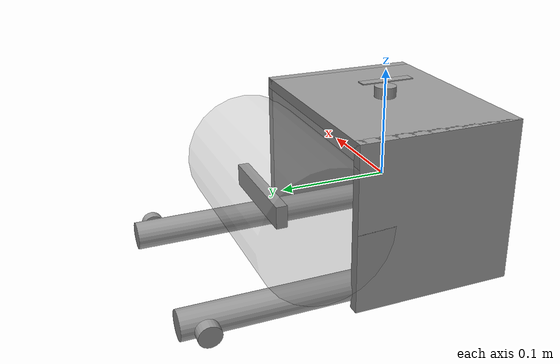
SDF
<?xml version='1.0'?>
<sdf version='1.6'>
  <model name='openrov-v1'>
    <link name='main_body'>
      <pose frame=''>0 0 0 0 -0 0</pose>
      <inertial>
        <mass>0.45</mass>
        <inertia>
          <ixx>1.04</ixx>
          <ixy>0</ixy>
          <ixz>0</ixz>
          <iyy>1.04</iyy>
          <iyz>0</iyz>
          <izz>1.04</izz>
        </inertia>
        <pose frame=''>0 0 0 0 -0 0</pose>
      </inertial>
      <self_collide>0</self_collide>
      <kinematic>0</kinematic>
      <gravity>1</gravity>
      <visual name='ModelPreview_10::Main_Body::visual_2'>
        <pose frame=''>-0.095 0 0 0 -0 0</pose>
        <geometry>
          <box>
            <size>0.01 0.15 0.15</size>
          </box>
        </geometry>
        <material>
          <lighting>1</lighting>
          <script>
            <uri>file://media/materials/scripts/gazebo.material</uri>
            <name>Gazebo/Grey</name>
          </script>
          <ambient>0.3 0.3 0.3 1</ambient>
          <diffuse>0.7 0.7 0.7 1</diffuse>
          <specular>0.01 0.01 0.01 1</specular>
          <emissive>0 0 0 1</emissive>
          <shader type='vertex'>
            <normal_map>__default__</normal_map>
          </shader>
        </material>
        <cast_shadows>1</cast_shadows>
        <transparency>0</transparency>
      </visual>
      <visual name='ModelPreview_10::Main_Body::visual_1'>
        <pose frame=''>0.095 0 0 0 -0 0</pose>
        <geometry>
          <box>
            <size>0.01 0.15 0.15</size>
          </box>
        </geometry>
        <material>
          <lighting>1</lighting>
          <script>
            <uri>file://media/materials/scripts/gazebo.material</uri>
            <name>Gazebo/Grey</name>
          </script>
          <ambient>0.3 0.3 0.3 1</ambient>
          <diffuse>0.7 0.7 0.7 1</diffuse>
          <specular>0.01 0.01 0.01 1</specular>
          <emissive>0 0 0 1</emissive>
          <shader type='vertex'>
            <normal_map>__default__</normal_map>
          </shader>
        </material>
        <cast_shadows>1</cast_shadows>
        <transparency>0</transparency>
      </visual>
      <visual name='visual'>
        <pose frame=''>0 0 0.07 0 -0 0</pose>
        <geometry>
          <box>
            <size>0.2 0.15 0.01</size>
          </box>
        </geometry>
        <material>
          <lighting>1</lighting>
          <script>
            <uri>file://media/materials/scripts/gazebo.material</uri>
            <name>Gazebo/Grey</name>
          </script>
          <ambient>0.3 0.3 0.3 1</ambient>
          <diffuse>0.7 0.7 0.7 1</diffuse>
          <specular>0.01 0.01 0.01 1</specular>
          <emissive>0 0 0 1</emissive>
          <shader type='vertex'>
            <normal_map>__default__</normal_map>
          </shader>
        </material>
        <cast_shadows>1</cast_shadows>
        <transparency>0</transparency>
      </visual>
      <collision name='collision'>
        <laser_retro>0</laser_retro>
        <max_contacts>10</max_contacts>
        <pose frame=''>0 0 0.07 0 -0 0</pose>
        <geometry>
          <box>
            <size>0.2 0.15 0.01</size>
          </box>
        </geometry>
        <surface>
          <friction>
            <ode>
              <mu>1</mu>
              <mu2>1</mu2>
              <fdir1>0 0 0</fdir1>
              <slip1>0</slip1>
              <slip2>0</slip2>
            </ode>
            <torsional>
              <coefficient>1</coefficient>
              <patch_radius>0</patch_radius>
              <surface_radius>0</surface_radius>
              <use_patch_radius>1</use_patch_radius>
              <ode>
                <slip>0</slip>
              </ode>
            </torsional>
          </friction>
          <bounce>
            <restitution_coefficient>0</restitution_coefficient>
            <threshold>1e+06</threshold>
          </bounce>
          <contact>
            <collide_without_contact>0</collide_without_contact>
            <collide_without_contact_bitmask>1</collide_without_contact_bitmask>
            <collide_bitmask>1</collide_bitmask>
            <ode>
              <soft_cfm>0</soft_cfm>
              <soft_erp>0.2</soft_erp>
              <kp>1e+13</kp>
              <kd>1</kd>
              <max_vel>0.01</max_vel>
              <min_depth>0</min_depth>
            </ode>
            <bullet>
              <split_impulse>1</split_impulse>
              <split_impulse_penetration_threshold>-0.01</split_impulse_penetration_threshold>
              <soft_cfm>0</soft_cfm>
              <soft_erp>0.2</soft_erp>
              <kp>1e+13</kp>
              <kd>1</kd>
            </bullet>
          </contact>
        </surface>
      </collision>
      <collision name='collision_1'>
        <laser_retro>0</laser_retro>
        <max_contacts>10</max_contacts>
        <pose frame=''>0.095 0 0 0 -0 0</pose>
        <geometry>
          <box>
            <size>0.01 0.15 0.15</size>
          </box>
        </geometry>
        <surface>
          <friction>
            <ode>
              <mu>1</mu>
              <mu2>1</mu2>
              <fdir1>0 0 0</fdir1>
              <slip1>0</slip1>
              <slip2>0</slip2>
            </ode>
            <torsional>
              <coefficient>1</coefficient>
              <patch_radius>0</patch_radius>
              <surface_radius>0</surface_radius>
              <use_patch_radius>1</use_patch_radius>
              <ode>
                <slip>0</slip>
              </ode>
            </torsional>
          </friction>
          <bounce>
            <restitution_coefficient>0</restitution_coefficient>
            <threshold>1e+06</threshold>
          </bounce>
          <contact>
            <collide_without_contact>0</collide_without_contact>
            <collide_without_contact_bitmask>1</collide_without_contact_bitmask>
            <collide_bitmask>1</collide_bitmask>
            <ode>
              <soft_cfm>0</soft_cfm>
              <soft_erp>0.2</soft_erp>
              <kp>1e+13</kp>
              <kd>1</kd>
              <max_vel>0.01</max_vel>
              <min_depth>0</min_depth>
            </ode>
            <bullet>
              <split_impulse>1</split_impulse>
              <split_impulse_penetration_threshold>-0.01</split_impulse_penetration_threshold>
              <soft_cfm>0</soft_cfm>
              <soft_erp>0.2</soft_erp>
              <kp>1e+13</kp>
              <kd>1</kd>
            </bullet>
          </contact>
        </surface>
      </collision>
      <collision name='collision_2'>
        <laser_retro>0</laser_retro>
        <max_contacts>10</max_contacts>
        <pose frame=''>-0.095 0 0 0 -0 0</pose>
        <geometry>
          <box>
            <size>0.01 0.15 0.15</size>
          </box>
        </geometry>
        <surface>
          <friction>
            <ode>
              <mu>1</mu>
              <mu2>1</mu2>
              <fdir1>0 0 0</fdir1>
              <slip1>0</slip1>
              <slip2>0</slip2>
            </ode>
            <torsional>
              <coefficient>1</coefficient>
              <patch_radius>0</patch_radius>
              <surface_radius>0</surface_radius>
              <use_patch_radius>1</use_patch_radius>
              <ode>
                <slip>0</slip>
              </ode>
            </torsional>
          </friction>
          <bounce>
            <restitution_coefficient>0</restitution_coefficient>
            <threshold>1e+06</threshold>
          </bounce>
          <contact>
            <collide_without_contact>0</collide_without_contact>
            <collide_without_contact_bitmask>1</collide_without_contact_bitmask>
            <collide_bitmask>1</collide_bitmask>
            <ode>
              <soft_cfm>0</soft_cfm>
              <soft_erp>0.2</soft_erp>
              <kp>1e+13</kp>
              <kd>1</kd>
              <max_vel>0.01</max_vel>
              <min_depth>0</min_depth>
            </ode>
            <bullet>
              <split_impulse>1</split_impulse>
              <split_impulse_penetration_threshold>-0.01</split_impulse_penetration_threshold>
              <soft_cfm>0</soft_cfm>
              <soft_erp>0.2</soft_erp>
              <kp>1e+13</kp>
              <kd>1</kd>
            </bullet>
          </contact>
        </surface>
      </collision>
    </link>
    <link name='camera'>
      <pose frame=''>-0 0.12 -0 0 -0 0</pose>
      <inertial>
        <mass>0.02</mass>
        <inertia>
          <ixx>1.9e-07</ixx>
          <ixy>0</ixy>
          <ixz>0</ixz>
          <iyy>2.2e-07</iyy>
          <iyz>0</iyz>
          <izz>1.6e-07</izz>
        </inertia>
        <pose frame=''>0 0 0 0 -0 0</pose>
      </inertial>
      <self_collide>0</self_collide>
      <kinematic>0</kinematic>
      <sensor name='camera_sensor' type='camera'>
        <pose frame=''>0 0 0 0 -0 1.5707</pose>
        <always_on>1</always_on>
        <visualize>1</visualize>
        <camera name='__default__'>
          <horizontal_fov>2.0943</horizontal_fov>
          <image>
            <width>320</width>
            <height>240</height>
          </image>
          <clip>
            <near>0.1</near>
            <far>100</far>
          </clip>
          <save enabled='0'>
            <path>/home/emanuel/tmp/camera</path>
          </save>
        </camera>
        <plugin name='camera_controller' filename='libgazebo_ros_camera.so'>
          <alwaysOn>true</alwaysOn>
          <updateRate>30.0</updateRate>
          <cameraName>OpenROV/sensor/camera</cameraName>
          <imageTopicName>image_raw</imageTopicName>
          <cameraInfoTopicName>camera_info</cameraInfoTopicName>
          <frameName>camera</frameName>
          <hackBaseline>0.07</hackBaseline>
          <distortionK1>0.0</distortionK1>
          <distortionK2>0.0</distortionK2>
          <distortionK3>0.0</distortionK3>
          <distortionT1>0.0</distortionT1>
          <distortionT2>0.0</distortionT2>
        </plugin>
      </sensor>
      <visual name='visual'>
        <pose frame=''>0 0 0 0 -0 0</pose>
        <geometry>
          <box>
            <size>0.1 0.01 0.02</size>
          </box>
        </geometry>
        <material>
          <lighting>1</lighting>
          <script>
            <uri>file://media/materials/scripts/gazebo.material</uri>
            <name>Gazebo/Grey</name>
          </script>
          <ambient>0.3 0.3 0.3 1</ambient>
          <diffuse>0.7 0.7 0.7 1</diffuse>
          <specular>0.01 0.01 0.01 1</specular>
          <emissive>0 0 0 1</emissive>
          <shader type='vertex'>
            <normal_map>__default__</normal_map>
          </shader>
        </material>
        <cast_shadows>1</cast_shadows>
        <transparency>0</transparency>
      </visual>
      <collision name='collision_0'>
        <laser_retro>0</laser_retro>
        <max_contacts>10</max_contacts>
        <pose frame=''>0 0 0 0 -0 0</pose>
        <geometry>
          <box>
            <size>0.1 0.01 0.02</size>
          </box>
        </geometry>
        <surface>
          <friction>
            <ode>
              <mu>1</mu>
              <mu2>1</mu2>
              <fdir1>0 0 0</fdir1>
              <slip1>0</slip1>
              <slip2>0</slip2>
            </ode>
            <torsional>
              <coefficient>1</coefficient>
              <patch_radius>0</patch_radius>
              <surface_radius>0</surface_radius>
              <use_patch_radius>1</use_patch_radius>
              <ode>
                <slip>0</slip>
              </ode>
            </torsional>
          </friction>
          <bounce>
            <restitution_coefficient>0</restitution_coefficient>
            <threshold>1e+06</threshold>
          </bounce>
          <contact>
            <collide_without_contact>0</collide_without_contact>
            <collide_without_contact_bitmask>1</collide_without_contact_bitmask>
            <collide_bitmask>1</collide_bitmask>
            <ode>
              <soft_cfm>0</soft_cfm>
              <soft_erp>0.2</soft_erp>
              <kp>1e+13</kp>
              <kd>1</kd>
              <max_vel>0.01</max_vel>
              <min_depth>0</min_depth>
            </ode>
            <bullet>
              <split_impulse>1</split_impulse>
              <split_impulse_penetration_threshold>-0.01</split_impulse_penetration_threshold>
              <soft_cfm>0</soft_cfm>
              <soft_erp>0.2</soft_erp>
              <kp>1e+13</kp>
              <kd>1</kd>
            </bullet>
          </contact>
        </surface>
      </collision>
    </link>
    <link name='electronics_tube'>
      <pose frame=''>-0 0.1 0 3.13852 1.57079 3.13852</pose>
      <inertial>
        <mass>2</mass>
        <inertia>
          <ixx>0.0036</ixx>
          <ixy>0</ixy>
          <ixz>0</ixz>
          <iyy>0.0084666</iyy>
          <iyz>0</iyz>
          <izz>0.0036</izz>
        </inertia>
        <pose frame=''>0 0 0 0 -0 0</pose>
      </inertial>
      <self_collide>0</self_collide>
      <kinematic>0</kinematic>
      <visual name='visual'>
        <pose frame=''>0 0 0 0 -0 0</pose>
        <geometry>
          <cylinder>
            <radius>0.06</radius>
            <length>0.2</length>
          </cylinder>
        </geometry>
        <material>
          <lighting>1</lighting>
          <script>
            <uri>file://media/materials/scripts/gazebo.material</uri>
            <name>Gazebo/Grey</name>
          </script>
          <ambient>0.3 0.3 0.3 1</ambient>
          <diffuse>0.7 0.7 0.7 1</diffuse>
          <specular>0.01 0.01 0.01 1</specular>
          <emissive>0 0 0 1</emissive>
          <shader type='vertex'>
            <normal_map>__default__</normal_map>
          </shader>
        </material>
        <cast_shadows>1</cast_shadows>
        <transparency>0.7</transparency>
      </visual>
      <collision name='collision_1'>
        <laser_retro>0</laser_retro>
        <max_contacts>10</max_contacts>
        <pose frame=''>0 0 0 0 -0 0</pose>
        <geometry>
          <cylinder>
            <radius>0.06</radius>
            <length>0.2</length>
          </cylinder>
        </geometry>
        <surface>
          <friction>
            <ode>
              <mu>1</mu>
              <mu2>1</mu2>
              <fdir1>0 0 0</fdir1>
              <slip1>0</slip1>
              <slip2>0</slip2>
            </ode>
            <torsional>
              <coefficient>1</coefficient>
              <patch_radius>0</patch_radius>
              <surface_radius>0</surface_radius>
              <use_patch_radius>1</use_patch_radius>
              <ode>
                <slip>0</slip>
              </ode>
            </torsional>
          </friction>
          <bounce>
            <restitution_coefficient>0</restitution_coefficient>
            <threshold>1e+06</threshold>
          </bounce>
          <contact>
            <collide_without_contact>0</collide_without_contact>
            <collide_without_contact_bitmask>1</collide_without_contact_bitmask>
            <collide_bitmask>1</collide_bitmask>
            <ode>
              <soft_cfm>0</soft_cfm>
              <soft_erp>0.2</soft_erp>
              <kp>1e+13</kp>
              <kd>1</kd>
              <max_vel>0.01</max_vel>
              <min_depth>0</min_depth>
            </ode>
            <bullet>
              <split_impulse>1</split_impulse>
              <split_impulse_penetration_threshold>-0.01</split_impulse_penetration_threshold>
              <soft_cfm>0</soft_cfm>
              <soft_erp>0.2</soft_erp>
              <kp>1e+13</kp>
              <kd>1</kd>
            </bullet>
          </contact>
        </surface>
      </collision>
    </link>
    <link name='left_batterytube'>
      <pose frame=''>-0.08 0.07 -0.06 1.57079 -0 0</pose>
      <inertial>
        <mass>0.3</mass>
        <inertia>
          <ixx>0.00226267</ixx>
          <ixy>0</ixy>
          <ixz>0</ixz>
          <iyy>2.535e-05</iyy>
          <iyz>0</iyz>
          <izz>0.00226267</izz>
        </inertia>
        <pose frame=''>0 0 0 0 -0 0</pose>
      </inertial>
      <self_collide>0</self_collide>
      <kinematic>0</kinematic>
      <visual name='visual'>
        <pose frame=''>0 0 0 0 -0 0</pose>
        <geometry>
          <cylinder>
            <radius>0.013</radius>
            <length>0.3</length>
          </cylinder>
        </geometry>
        <material>
          <lighting>1</lighting>
          <script>
            <uri>file://media/materials/scripts/gazebo.material</uri>
            <name>Gazebo/Grey</name>
          </script>
          <ambient>0.3 0.3 0.3 1</ambient>
          <diffuse>0.7 0.7 0.7 1</diffuse>
          <specular>0.01 0.01 0.01 1</specular>
          <emissive>0 0 0 1</emissive>
          <shader type='vertex'>
            <normal_map>__default__</normal_map>
          </shader>
        </material>
        <cast_shadows>1</cast_shadows>
        <transparency>0</transparency>
      </visual>
      <collision name='collision'>
        <laser_retro>0</laser_retro>
        <max_contacts>10</max_contacts>
        <pose frame=''>0 0 0 0 -0 0</pose>
        <geometry>
          <cylinder>
            <radius>0.013</radius>
            <length>0.3</length>
          </cylinder>
        </geometry>
        <surface>
          <friction>
            <ode>
              <mu>1</mu>
              <mu2>1</mu2>
              <fdir1>0 0 0</fdir1>
              <slip1>0</slip1>
              <slip2>0</slip2>
            </ode>
            <torsional>
              <coefficient>1</coefficient>
              <patch_radius>0</patch_radius>
              <surface_radius>0</surface_radius>
              <use_patch_radius>1</use_patch_radius>
              <ode>
                <slip>0</slip>
              </ode>
            </torsional>
          </friction>
          <bounce>
            <restitution_coefficient>0</restitution_coefficient>
            <threshold>1e+06</threshold>
          </bounce>
          <contact>
            <collide_without_contact>0</collide_without_contact>
            <collide_without_contact_bitmask>1</collide_without_contact_bitmask>
            <collide_bitmask>1</collide_bitmask>
            <ode>
              <soft_cfm>0</soft_cfm>
              <soft_erp>0.2</soft_erp>
              <kp>1e+13</kp>
              <kd>1</kd>
              <max_vel>0.01</max_vel>
              <min_depth>0</min_depth>
            </ode>
            <bullet>
              <split_impulse>1</split_impulse>
              <split_impulse_penetration_threshold>-0.01</split_impulse_penetration_threshold>
              <soft_cfm>0</soft_cfm>
              <soft_erp>0.2</soft_erp>
              <kp>1e+13</kp>
              <kd>1</kd>
            </bullet>
          </contact>
        </surface>
      </collision>
    </link>
    <link name='left_motor'>
      <pose frame=''>-0.05 -0.08 -0 1.5708 -0 0</pose>
      <inertial>
        <mass>0.065</mass>
        <inertia>
          <ixx>1.64e-06</ixx>
          <ixy>0</ixy>
          <ixz>0</ixz>
          <iyy>1.64e-06</iyy>
          <iyz>0</iyz>
          <izz>2.16e-06</izz>
        </inertia>
        <pose frame=''>0 0 0 0 -0 0</pose>
      </inertial>
      <self_collide>0</self_collide>
      <kinematic>0</kinematic>
      <visual name='visual'>
        <pose frame=''>0 0 0 0 -0 0</pose>
        <geometry>
          <cylinder>
            <radius>0.01</radius>
            <length>0.01</length>
          </cylinder>
        </geometry>
        <material>
          <lighting>1</lighting>
          <script>
            <uri>file://media/materials/scripts/gazebo.material</uri>
            <name>Gazebo/Grey</name>
          </script>
          <ambient>0.3 0.3 0.3 1</ambient>
          <diffuse>0.7 0.7 0.7 1</diffuse>
          <specular>0.01 0.01 0.01 1</specular>
          <emissive>0 0 0 1</emissive>
          <shader type='vertex'>
            <normal_map>__default__</normal_map>
          </shader>
        </material>
        <cast_shadows>1</cast_shadows>
        <transparency>0</transparency>
      </visual>
      <collision name='collision_0'>
        <laser_retro>0</laser_retro>
        <max_contacts>10</max_contacts>
        <pose frame=''>0 0 0 0 -0 0</pose>
        <geometry>
          <cylinder>
            <radius>0.01</radius>
            <length>0.01</length>
          </cylinder>
        </geometry>
        <surface>
          <friction>
            <ode>
              <mu>1</mu>
              <mu2>1</mu2>
              <fdir1>0 0 0</fdir1>
              <slip1>0</slip1>
              <slip2>0</slip2>
            </ode>
            <torsional>
              <coefficient>1</coefficient>
              <patch_radius>0</patch_radius>
              <surface_radius>0</surface_radius>
              <use_patch_radius>1</use_patch_radius>
              <ode>
                <slip>0</slip>
              </ode>
            </torsional>
          </friction>
          <bounce>
            <restitution_coefficient>0</restitution_coefficient>
            <threshold>1e+06</threshold>
          </bounce>
          <contact>
            <collide_without_contact>0</collide_without_contact>
            <collide_without_contact_bitmask>1</collide_without_contact_bitmask>
            <collide_bitmask>1</collide_bitmask>
            <ode>
              <soft_cfm>0</soft_cfm>
              <soft_erp>0.2</soft_erp>
              <kp>1e+13</kp>
              <kd>1</kd>
              <max_vel>0.01</max_vel>
              <min_depth>0</min_depth>
            </ode>
            <bullet>
              <split_impulse>1</split_impulse>
              <split_impulse_penetration_threshold>-0.01</split_impulse_penetration_threshold>
              <soft_cfm>0</soft_cfm>
              <soft_erp>0.2</soft_erp>
              <kp>1e+13</kp>
              <kd>1</kd>
            </bullet>
          </contact>
        </surface>
      </collision>
    </link>
    <link name='left_propeller'>
      <pose frame=''>-0.05 -0.09 0 1.5708 -0 0</pose>
      <inertial>
        <mass>0.01</mass>
        <inertia>
          <ixx>7.14e-06</ixx>
          <ixy>0</ixy>
          <ixz>0</ixz>
          <iyy>7.76e-06</iyy>
          <iyz>0</iyz>
          <izz>6.5e-07</izz>
        </inertia>
        <pose frame=''>0 0 0 0 -0 0</pose>
      </inertial>
      <self_collide>0</self_collide>
      <kinematic>0</kinematic>
      <visual name='visual'>
        <pose frame=''>0 0 0 0 -0 0</pose>
        <geometry>
          <box>
            <size>0.01 0.05 0.001</size>
          </box>
        </geometry>
        <material>
          <lighting>1</lighting>
          <script>
            <uri>file://media/materials/scripts/gazebo.material</uri>
            <name>Gazebo/Grey</name>
          </script>
          <ambient>0.3 0.3 0.3 1</ambient>
          <diffuse>0.7 0.7 0.7 1</diffuse>
          <specular>0.01 0.01 0.01 1</specular>
          <emissive>0 0 0 1</emissive>
          <shader type='vertex'>
            <normal_map>__default__</normal_map>
          </shader>
        </material>
        <cast_shadows>1</cast_shadows>
        <transparency>0</transparency>
      </visual>
      <collision name='collision_0'>
        <laser_retro>0</laser_retro>
        <max_contacts>10</max_contacts>
        <pose frame=''>0 0 0 0 -0 0</pose>
        <geometry>
          <box>
            <size>0.01 0.05 0.001</size>
          </box>
        </geometry>
        <surface>
          <friction>
            <ode>
              <mu>1</mu>
              <mu2>1</mu2>
              <fdir1>0 0 0</fdir1>
              <slip1>0</slip1>
              <slip2>0</slip2>
            </ode>
            <torsional>
              <coefficient>1</coefficient>
              <patch_radius>0</patch_radius>
              <surface_radius>0</surface_radius>
              <use_patch_radius>1</use_patch_radius>
              <ode>
                <slip>0</slip>
              </ode>
            </torsional>
          </friction>
          <bounce>
            <restitution_coefficient>0</restitution_coefficient>
            <threshold>1e+06</threshold>
          </bounce>
          <contact>
            <collide_without_contact>0</collide_without_contact>
            <collide_without_contact_bitmask>1</collide_without_contact_bitmask>
            <collide_bitmask>1</collide_bitmask>
            <ode>
              <soft_cfm>0</soft_cfm>
              <soft_erp>0.2</soft_erp>
              <kp>1e+13</kp>
              <kd>1</kd>
              <max_vel>0.01</max_vel>
              <min_depth>0</min_depth>
            </ode>
            <bullet>
              <split_impulse>1</split_impulse>
              <split_impulse_penetration_threshold>-0.01</split_impulse_penetration_threshold>
              <soft_cfm>0</soft_cfm>
              <soft_erp>0.2</soft_erp>
              <kp>1e+13</kp>
              <kd>1</kd>
            </bullet>
          </contact>
        </surface>
      </collision>
    </link>
    <link name='left_weight'>
      <pose frame=''>-0.1 0.2 -0.06 -3.14159 -1.49239 -3.14159</pose>
      <inertial>
        <mass>0.05</mass>
        <inertia>
          <ixx>1.64e-06</ixx>
          <ixy>0</ixy>
          <ixz>0</ixz>
          <iyy>1.64e-06</iyy>
          <iyz>0</iyz>
          <izz>2.16e-06</izz>
        </inertia>
        <pose frame=''>0 0 0 0 -0 0</pose>
      </inertial>
      <self_collide>0</self_collide>
      <kinematic>0</kinematic>
      <visual name='visual_0'>
        <pose frame=''>0 0 0 0 -0 0</pose>
        <geometry>
          <cylinder>
            <radius>0.01</radius>
            <length>0.01</length>
          </cylinder>
        </geometry>
        <material>
          <lighting>1</lighting>
          <script>
            <uri>file://media/materials/scripts/gazebo.material</uri>
            <name>Gazebo/Grey</name>
          </script>
          <ambient>0.3 0.3 0.3 1</ambient>
          <diffuse>0.7 0.7 0.7 1</diffuse>
          <specular>0.01 0.01 0.01 1</specular>
          <emissive>0 0 0 1</emissive>
          <shader type='pixel'>
            <normal_map>__default__</normal_map>
          </shader>
        </material>
        <cast_shadows>1</cast_shadows>
        <transparency>0</transparency>
      </visual>
      <collision name='collision_0'>
        <laser_retro>0</laser_retro>
        <max_contacts>10</max_contacts>
        <pose frame=''>0 0 0 0 -0 0</pose>
        <geometry>
          <cylinder>
            <radius>0.01</radius>
            <length>0.01</length>
          </cylinder>
        </geometry>
        <surface>
          <friction>
            <ode>
              <mu>1</mu>
              <mu2>1</mu2>
              <fdir1>0 0 0</fdir1>
              <slip1>0</slip1>
              <slip2>0</slip2>
            </ode>
            <torsional>
              <coefficient>1</coefficient>
              <patch_radius>0</patch_radius>
              <surface_radius>0</surface_radius>
              <use_patch_radius>1</use_patch_radius>
              <ode>
                <slip>0</slip>
              </ode>
            </torsional>
          </friction>
          <bounce>
            <restitution_coefficient>0</restitution_coefficient>
            <threshold>1e+06</threshold>
          </bounce>
          <contact>
            <collide_without_contact>0</collide_without_contact>
            <collide_without_contact_bitmask>1</collide_without_contact_bitmask>
            <collide_bitmask>1</collide_bitmask>
            <ode>
              <soft_cfm>0</soft_cfm>
              <soft_erp>0.2</soft_erp>
              <kp>1e+13</kp>
              <kd>1</kd>
              <max_vel>0.01</max_vel>
              <min_depth>0</min_depth>
            </ode>
            <bullet>
              <split_impulse>1</split_impulse>
              <split_impulse_penetration_threshold>-0.01</split_impulse_penetration_threshold>
              <soft_cfm>0</soft_cfm>
              <soft_erp>0.2</soft_erp>
              <kp>1e+13</kp>
              <kd>1</kd>
            </bullet>
          </contact>
        </surface>
      </collision>
    </link>
    <link name='right_batterytube'>
      <pose frame=''>0.08 0.07 -0.06 1.57079 -0 0</pose>
      <inertial>
        <mass>0.3</mass>
        <inertia>
          <ixx>0.00226267</ixx>
          <ixy>0</ixy>
          <ixz>0</ixz>
          <iyy>2.535e-05</iyy>
          <iyz>0</iyz>
          <izz>0.0022626</izz>
        </inertia>
        <pose frame=''>0 0 0 0 -0 0</pose>
      </inertial>
      <self_collide>0</self_collide>
      <kinematic>0</kinematic>
      <visual name='visual'>
        <pose frame=''>0 0 0 0 -0 0</pose>
        <geometry>
          <cylinder>
            <radius>0.013</radius>
            <length>0.3</length>
          </cylinder>
        </geometry>
        <material>
          <lighting>1</lighting>
          <script>
            <uri>file://media/materials/scripts/gazebo.material</uri>
            <name>Gazebo/Grey</name>
          </script>
          <ambient>0.3 0.3 0.3 1</ambient>
          <diffuse>0.7 0.7 0.7 1</diffuse>
          <specular>0.01 0.01 0.01 1</specular>
          <emissive>0 0 0 1</emissive>
          <shader type='vertex'>
            <normal_map>__default__</normal_map>
          </shader>
        </material>
        <cast_shadows>1</cast_shadows>
        <transparency>0</transparency>
      </visual>
      <collision name='collision'>
        <laser_retro>0</laser_retro>
        <max_contacts>10</max_contacts>
        <pose frame=''>0 0 0 0 -0 0</pose>
        <geometry>
          <cylinder>
            <radius>0.013</radius>
            <length>0.3</length>
          </cylinder>
        </geometry>
        <surface>
          <friction>
            <ode>
              <mu>1</mu>
              <mu2>1</mu2>
              <fdir1>0 0 0</fdir1>
              <slip1>0</slip1>
              <slip2>0</slip2>
            </ode>
            <torsional>
              <coefficient>1</coefficient>
              <patch_radius>0</patch_radius>
              <surface_radius>0</surface_radius>
              <use_patch_radius>1</use_patch_radius>
              <ode>
                <slip>0</slip>
              </ode>
            </torsional>
          </friction>
          <bounce>
            <restitution_coefficient>0</restitution_coefficient>
            <threshold>1e+06</threshold>
          </bounce>
          <contact>
            <collide_without_contact>0</collide_without_contact>
            <collide_without_contact_bitmask>1</collide_without_contact_bitmask>
            <collide_bitmask>1</collide_bitmask>
            <ode>
              <soft_cfm>0</soft_cfm>
              <soft_erp>0.2</soft_erp>
              <kp>1e+13</kp>
              <kd>1</kd>
              <max_vel>0.01</max_vel>
              <min_depth>0</min_depth>
            </ode>
            <bullet>
              <split_impulse>1</split_impulse>
              <split_impulse_penetration_threshold>-0.01</split_impulse_penetration_threshold>
              <soft_cfm>0</soft_cfm>
              <soft_erp>0.2</soft_erp>
              <kp>1e+13</kp>
              <kd>1</kd>
            </bullet>
          </contact>
        </surface>
      </collision>
    </link>
    <link name='right_motor'>
      <pose frame=''>0.05 -0.08 -0 1.5708 -0 0</pose>
      <inertial>
        <mass>0.065</mass>
        <inertia>
          <ixx>1.64e-06</ixx>
          <ixy>0</ixy>
          <ixz>0</ixz>
          <iyy>1.64e-06</iyy>
          <iyz>0</iyz>
          <izz>2.16e-06</izz>
        </inertia>
        <pose frame=''>0 0 0 0 -0 0</pose>
      </inertial>
      <self_collide>0</self_collide>
      <kinematic>0</kinematic>
      <visual name='visual_0'>
        <pose frame=''>0 0 0 0 -0 0</pose>
        <geometry>
          <cylinder>
            <radius>0.01</radius>
            <length>0.01</length>
          </cylinder>
        </geometry>
        <material>
          <lighting>1</lighting>
          <script>
            <uri>file://media/materials/scripts/gazebo.material</uri>
            <name>Gazebo/Grey</name>
          </script>
          <ambient>0.3 0.3 0.3 1</ambient>
          <diffuse>0.7 0.7 0.7 1</diffuse>
          <specular>0.01 0.01 0.01 1</specular>
          <emissive>0 0 0 1</emissive>
          <shader type='pixel'>
            <normal_map>__default__</normal_map>
          </shader>
        </material>
        <cast_shadows>1</cast_shadows>
        <transparency>0</transparency>
      </visual>
      <collision name='collision_0'>
        <laser_retro>0</laser_retro>
        <max_contacts>10</max_contacts>
        <pose frame=''>0 0 0 0 -0 0</pose>
        <geometry>
          <cylinder>
            <radius>0.01</radius>
            <length>0.01</length>
          </cylinder>
        </geometry>
        <surface>
          <friction>
            <ode>
              <mu>1</mu>
              <mu2>1</mu2>
              <fdir1>0 0 0</fdir1>
              <slip1>0</slip1>
              <slip2>0</slip2>
            </ode>
            <torsional>
              <coefficient>1</coefficient>
              <patch_radius>0</patch_radius>
              <surface_radius>0</surface_radius>
              <use_patch_radius>1</use_patch_radius>
              <ode>
                <slip>0</slip>
              </ode>
            </torsional>
          </friction>
          <bounce>
            <restitution_coefficient>0</restitution_coefficient>
            <threshold>1e+06</threshold>
          </bounce>
          <contact>
            <collide_without_contact>0</collide_without_contact>
            <collide_without_contact_bitmask>1</collide_without_contact_bitmask>
            <collide_bitmask>1</collide_bitmask>
            <ode>
              <soft_cfm>0</soft_cfm>
              <soft_erp>0.2</soft_erp>
              <kp>1e+13</kp>
              <kd>1</kd>
              <max_vel>0.01</max_vel>
              <min_depth>0</min_depth>
            </ode>
            <bullet>
              <split_impulse>1</split_impulse>
              <split_impulse_penetration_threshold>-0.01</split_impulse_penetration_threshold>
              <soft_cfm>0</soft_cfm>
              <soft_erp>0.2</soft_erp>
              <kp>1e+13</kp>
              <kd>1</kd>
            </bullet>
          </contact>
        </surface>
      </collision>
    </link>
    <link name='right_propeller'>
      <pose frame=''>0.05 -0.09 0 1.5708 -0 0</pose>
      <inertial>
        <mass>0.01</mass>
        <inertia>
          <ixx>7.14e-06</ixx>
          <ixy>0</ixy>
          <ixz>0</ixz>
          <iyy>7.76e-06</iyy>
          <iyz>0</iyz>
          <izz>6.5e-07</izz>
        </inertia>
        <pose frame=''>0 0 0 0 -0 0</pose>
      </inertial>
      <self_collide>0</self_collide>
      <kinematic>0</kinematic>
      <visual name='visual'>
        <pose frame=''>0 0 0 0 -0 0</pose>
        <geometry>
          <box>
            <size>0.01 0.05 0.001</size>
          </box>
        </geometry>
        <material>
          <lighting>1</lighting>
          <script>
            <uri>file://media/materials/scripts/gazebo.material</uri>
            <name>Gazebo/Grey</name>
          </script>
          <ambient>0.3 0.3 0.3 1</ambient>
          <diffuse>0.7 0.7 0.7 1</diffuse>
          <specular>0.01 0.01 0.01 1</specular>
          <emissive>0 0 0 1</emissive>
          <shader type='pixel'>
            <normal_map>__default__</normal_map>
          </shader>
        </material>
        <cast_shadows>1</cast_shadows>
        <transparency>0</transparency>
      </visual>
      <collision name='collision_0'>
        <laser_retro>0</laser_retro>
        <max_contacts>10</max_contacts>
        <pose frame=''>0 0 0 0 -0 0</pose>
        <geometry>
          <box>
            <size>0.01 0.05 0.001</size>
          </box>
        </geometry>
        <surface>
          <friction>
            <ode>
              <mu>1</mu>
              <mu2>1</mu2>
              <fdir1>0 0 0</fdir1>
              <slip1>0</slip1>
              <slip2>0</slip2>
            </ode>
            <torsional>
              <coefficient>1</coefficient>
              <patch_radius>0</patch_radius>
              <surface_radius>0</surface_radius>
              <use_patch_radius>1</use_patch_radius>
              <ode>
                <slip>0</slip>
              </ode>
            </torsional>
          </friction>
          <bounce>
            <restitution_coefficient>0</restitution_coefficient>
            <threshold>1e+06</threshold>
          </bounce>
          <contact>
            <collide_without_contact>0</collide_without_contact>
            <collide_without_contact_bitmask>1</collide_without_contact_bitmask>
            <collide_bitmask>1</collide_bitmask>
            <ode>
              <soft_cfm>0</soft_cfm>
              <soft_erp>0.2</soft_erp>
              <kp>1e+13</kp>
              <kd>1</kd>
              <max_vel>0.01</max_vel>
              <min_depth>0</min_depth>
            </ode>
            <bullet>
              <split_impulse>1</split_impulse>
              <split_impulse_penetration_threshold>-0.01</split_impulse_penetration_threshold>
              <soft_cfm>0</soft_cfm>
              <soft_erp>0.2</soft_erp>
              <kp>1e+13</kp>
              <kd>1</kd>
            </bullet>
          </contact>
        </surface>
      </collision>
    </link>
    <link name='right_weight'>
      <pose frame=''>0.1 0.2 -0.06 0 1.55091 0</pose>
      <inertial>
        <mass>0.05</mass>
        <inertia>
          <ixx>1.64e-06</ixx>
          <ixy>0</ixy>
          <ixz>0</ixz>
          <iyy>1.64e-06</iyy>
          <iyz>0</iyz>
          <izz>2.16e-06</izz>
        </inertia>
        <pose frame=''>0 0 0 0 -0 0</pose>
      </inertial>
      <self_collide>0</self_collide>
      <kinematic>0</kinematic>
      <visual name='visual_0'>
        <pose frame=''>0 0 0 0 -0 0</pose>
        <geometry>
          <cylinder>
            <radius>0.01</radius>
            <length>0.01</length>
          </cylinder>
        </geometry>
        <material>
          <lighting>1</lighting>
          <script>
            <uri>file://media/materials/scripts/gazebo.material</uri>
            <name>Gazebo/Grey</name>
          </script>
          <ambient>0.3 0.3 0.3 1</ambient>
          <diffuse>0.7 0.7 0.7 1</diffuse>
          <specular>0.01 0.01 0.01 1</specular>
          <emissive>0 0 0 1</emissive>
          <shader type='pixel'>
            <normal_map>__default__</normal_map>
          </shader>
        </material>
        <cast_shadows>1</cast_shadows>
        <transparency>0</transparency>
      </visual>
      <collision name='collision_0'>
        <laser_retro>0</laser_retro>
        <max_contacts>10</max_contacts>
        <pose frame=''>0 0 0 0 -0 0</pose>
        <geometry>
          <cylinder>
            <radius>0.01</radius>
            <length>0.01</length>
          </cylinder>
        </geometry>
        <surface>
          <friction>
            <ode>
              <mu>1</mu>
              <mu2>1</mu2>
              <fdir1>0 0 0</fdir1>
              <slip1>0</slip1>
              <slip2>0</slip2>
            </ode>
            <torsional>
              <coefficient>1</coefficient>
              <patch_radius>0</patch_radius>
              <surface_radius>0</surface_radius>
              <use_patch_radius>1</use_patch_radius>
              <ode>
                <slip>0</slip>
              </ode>
            </torsional>
          </friction>
          <bounce>
            <restitution_coefficient>0</restitution_coefficient>
            <threshold>1e+06</threshold>
          </bounce>
          <contact>
            <collide_without_contact>0</collide_without_contact>
            <collide_without_contact_bitmask>1</collide_without_contact_bitmask>
            <collide_bitmask>1</collide_bitmask>
            <ode>
              <soft_cfm>0</soft_cfm>
              <soft_erp>0.2</soft_erp>
              <kp>1e+13</kp>
              <kd>1</kd>
              <max_vel>0.01</max_vel>
              <min_depth>0</min_depth>
            </ode>
            <bullet>
              <split_impulse>1</split_impulse>
              <split_impulse_penetration_threshold>-0.01</split_impulse_penetration_threshold>
              <soft_cfm>0</soft_cfm>
              <soft_erp>0.2</soft_erp>
              <kp>1e+13</kp>
              <kd>1</kd>
            </bullet>
          </contact>
        </surface>
      </collision>
    </link>
    <link name='top_motor'>
      <pose frame=''>0 0 0.08 0 -0 0</pose>
      <inertial>
        <mass>0.065</mass>
        <inertia>
          <ixx>1.64e-06</ixx>
          <ixy>0</ixy>
          <ixz>0</ixz>
          <iyy>1.64e-06</iyy>
          <iyz>0</iyz>
          <izz>2.16e-06</izz>
        </inertia>
        <pose frame=''>0 0 0 0 -0 0</pose>
      </inertial>
      <self_collide>0</self_collide>
      <kinematic>0</kinematic>
      <visual name='visual_0'>
        <pose frame=''>0 0 0 0 -0 0</pose>
        <geometry>
          <cylinder>
            <radius>0.01</radius>
            <length>0.01</length>
          </cylinder>
        </geometry>
        <material>
          <lighting>1</lighting>
          <script>
            <uri>file://media/materials/scripts/gazebo.material</uri>
            <name>Gazebo/Grey</name>
          </script>
          <ambient>0.3 0.3 0.3 1</ambient>
          <diffuse>0.7 0.7 0.7 1</diffuse>
          <specular>0.01 0.01 0.01 1</specular>
          <emissive>0 0 0 1</emissive>
          <shader type='pixel'>
            <normal_map>__default__</normal_map>
          </shader>
        </material>
        <cast_shadows>1</cast_shadows>
        <transparency>0</transparency>
      </visual>
      <collision name='collision_0'>
        <laser_retro>0</laser_retro>
        <max_contacts>10</max_contacts>
        <pose frame=''>0 0 0 0 -0 0</pose>
        <geometry>
          <cylinder>
            <radius>0.01</radius>
            <length>0.01</length>
          </cylinder>
        </geometry>
        <surface>
          <friction>
            <ode>
              <mu>1</mu>
              <mu2>1</mu2>
              <fdir1>0 0 0</fdir1>
              <slip1>0</slip1>
              <slip2>0</slip2>
            </ode>
            <torsional>
              <coefficient>1</coefficient>
              <patch_radius>0</patch_radius>
              <surface_radius>0</surface_radius>
              <use_patch_radius>1</use_patch_radius>
              <ode>
                <slip>0</slip>
              </ode>
            </torsional>
          </friction>
          <bounce>
            <restitution_coefficient>0</restitution_coefficient>
            <threshold>1e+06</threshold>
          </bounce>
          <contact>
            <collide_without_contact>0</collide_without_contact>
            <collide_without_contact_bitmask>1</collide_without_contact_bitmask>
            <collide_bitmask>1</collide_bitmask>
            <ode>
              <soft_cfm>0</soft_cfm>
              <soft_erp>0.2</soft_erp>
              <kp>1e+13</kp>
              <kd>1</kd>
              <max_vel>0.01</max_vel>
              <min_depth>0</min_depth>
            </ode>
            <bullet>
              <split_impulse>1</split_impulse>
              <split_impulse_penetration_threshold>-0.01</split_impulse_penetration_threshold>
              <soft_cfm>0</soft_cfm>
              <soft_erp>0.2</soft_erp>
              <kp>1e+13</kp>
              <kd>1</kd>
            </bullet>
          </contact>
        </surface>
      </collision>
    </link>
    <link name='top_propeller'>
      <pose frame=''>-0 0 0.09 0 -0 0</pose>
      <inertial>
        <mass>0.01</mass>
        <inertia>
          <ixx>7.14e-06</ixx>
          <ixy>0</ixy>
          <ixz>0</ixz>
          <iyy>7.76e-06</iyy>
          <iyz>0</iyz>
          <izz>6.5e-07</izz>
        </inertia>
        <pose frame=''>0 0 0 0 -0 0</pose>
      </inertial>
      <self_collide>0</self_collide>
      <kinematic>0</kinematic>
      <visual name='visual'>
        <pose frame=''>0 0 0 0 -0 0</pose>
        <geometry>
          <box>
            <size>0.01 0.05 0.001</size>
          </box>
        </geometry>
        <material>
          <lighting>1</lighting>
          <script>
            <uri>file://media/materials/scripts/gazebo.material</uri>
            <name>Gazebo/Grey</name>
          </script>
          <ambient>0.3 0.3 0.3 1</ambient>
          <diffuse>0.7 0.7 0.7 1</diffuse>
          <specular>0.01 0.01 0.01 1</specular>
          <emissive>0 0 0 1</emissive>
          <shader type='pixel'>
            <normal_map>__default__</normal_map>
          </shader>
        </material>
        <cast_shadows>1</cast_shadows>
        <transparency>0</transparency>
      </visual>
      <collision name='collision_0'>
        <laser_retro>0</laser_retro>
        <max_contacts>10</max_contacts>
        <pose frame=''>0 0 0 0 -0 0</pose>
        <geometry>
          <box>
            <size>0.01 0.05 0.001</size>
          </box>
        </geometry>
        <surface>
          <friction>
            <ode>
              <mu>1</mu>
              <mu2>1</mu2>
              <fdir1>0 0 0</fdir1>
              <slip1>0</slip1>
              <slip2>0</slip2>
            </ode>
            <torsional>
              <coefficient>1</coefficient>
              <patch_radius>0</patch_radius>
              <surface_radius>0</surface_radius>
              <use_patch_radius>1</use_patch_radius>
              <ode>
                <slip>0</slip>
              </ode>
            </torsional>
          </friction>
          <bounce>
            <restitution_coefficient>0</restitution_coefficient>
            <threshold>1e+06</threshold>
          </bounce>
          <contact>
            <collide_without_contact>0</collide_without_contact>
            <collide_without_contact_bitmask>1</collide_without_contact_bitmask>
            <collide_bitmask>1</collide_bitmask>
            <ode>
              <soft_cfm>0</soft_cfm>
              <soft_erp>0.2</soft_erp>
              <kp>1e+13</kp>
              <kd>1</kd>
              <max_vel>0.01</max_vel>
              <min_depth>0</min_depth>
            </ode>
            <bullet>
              <split_impulse>1</split_impulse>
              <split_impulse_penetration_threshold>-0.01</split_impulse_penetration_threshold>
              <soft_cfm>0</soft_cfm>
              <soft_erp>0.2</soft_erp>
              <kp>1e+13</kp>
              <kd>1</kd>
            </bullet>
          </contact>
        </surface>
      </collision>
    </link>
    <joint name='camera_joint' type='fixed'>
      <parent>electronics_tube</parent>
      <child>camera</child>
      <pose frame=''>0 0 0 0 -0 0</pose>
      <physics>
        <ode>
          <limit>
            <cfm>0</cfm>
            <erp>0.2</erp>
          </limit>
          <suspension>
            <cfm>0</cfm>
            <erp>0.2</erp>
          </suspension>
        </ode>
      </physics>
    </joint>
    <joint name='electronics_tube_joint' type='revolute'>
      <parent>main_body</parent>
      <child>electronics_tube</child>
      <pose frame=''>0 0 0 0 -0 0</pose>
      <axis>
        <xyz>0 0 1</xyz>
        <use_parent_model_frame>0</use_parent_model_frame>
        <limit>
          <lower>-1.0472</lower>
          <upper>1.0472</upper>
          <effort>-1</effort>
          <velocity>-1</velocity>
        </limit>
        <dynamics>
          <spring_reference>0</spring_reference>
          <spring_stiffness>0</spring_stiffness>
          <damping>0.001</damping>
          <friction>0</friction>
        </dynamics>
      </axis>
      <physics>
        <ode>
          <limit>
            <cfm>0</cfm>
            <erp>0.2</erp>
          </limit>
          <suspension>
            <cfm>0</cfm>
            <erp>0.2</erp>
          </suspension>
        </ode>
      </physics>
    </joint>
    <joint name='left_batterytube_joint' type='fixed'>
      <parent>main_body</parent>
      <child>left_batterytube</child>
      <pose frame=''>0 0 0 0 -0 0</pose>
      <physics>
        <ode>
          <limit>
            <cfm>0</cfm>
            <erp>0.2</erp>
          </limit>
          <suspension>
            <cfm>0</cfm>
            <erp>0.2</erp>
          </suspension>
        </ode>
      </physics>
    </joint>
    <joint name='left_motor_joint' type='revolute'>
      <parent>main_body</parent>
      <child>left_motor</child>
      <pose frame=''>0 0 0 0 -0 0</pose>
      <axis>
        <xyz>0 0 1</xyz>
        <use_parent_model_frame>0</use_parent_model_frame>
        <limit>
          <lower>-1e+12</lower>
          <upper>1e+12</upper>
          <effort>-1</effort>
          <velocity>-1</velocity>
        </limit>
        <dynamics>
          <spring_reference>0</spring_reference>
          <spring_stiffness>0</spring_stiffness>
          <damping>0.001</damping>
          <friction>0</friction>
        </dynamics>
      </axis>
      <physics>
        <ode>
          <limit>
            <cfm>0</cfm>
            <erp>0.2</erp>
          </limit>
          <suspension>
            <cfm>0</cfm>
            <erp>0.2</erp>
          </suspension>
        </ode>
      </physics>
    </joint>
    <joint name='left_propeller_joint' type='fixed'>
      <parent>left_motor</parent>
      <child>left_propeller</child>
      <pose frame=''>0 0 0 0 -0 0</pose>
      <physics>
        <ode>
          <limit>
            <cfm>0</cfm>
            <erp>0.2</erp>
          </limit>
          <suspension>
            <cfm>0</cfm>
            <erp>0.2</erp>
          </suspension>
        </ode>
      </physics>
    </joint>
    <joint name='main_body_JOINT_0' type='fixed'>
      <parent>main_body</parent>
      <child>left_weight</child>
      <pose frame=''>0 0 0 0 -0 0</pose>
      <physics>
        <ode>
          <limit>
            <cfm>0</cfm>
            <erp>0.2</erp>
          </limit>
          <suspension>
            <cfm>0</cfm>
            <erp>0.2</erp>
          </suspension>
        </ode>
      </physics>
    </joint>
    <joint name='main_body_JOINT_1' type='fixed'>
      <parent>main_body</parent>
      <child>right_weight</child>
      <pose frame=''>0 0 0 0 -0 0</pose>
      <physics>
        <ode>
          <limit>
            <cfm>0</cfm>
            <erp>0.2</erp>
          </limit>
          <suspension>
            <cfm>0</cfm>
            <erp>0.2</erp>
          </suspension>
        </ode>
      </physics>
    </joint>
    <joint name='right_batterytube_joint' type='fixed'>
      <parent>main_body</parent>
      <child>right_batterytube</child>
      <pose frame=''>0 0 0 0 -0 0</pose>
      <physics>
        <ode>
          <limit>
            <cfm>0</cfm>
            <erp>0.2</erp>
          </limit>
          <suspension>
            <cfm>0</cfm>
            <erp>0.2</erp>
          </suspension>
        </ode>
      </physics>
    </joint>
    <joint name='right_motor_joint' type='revolute'>
      <parent>main_body</parent>
      <child>right_motor</child>
      <pose frame=''>0 0 0 0 -0 0</pose>
      <axis>
        <xyz>0 0 1</xyz>
        <use_parent_model_frame>0</use_parent_model_frame>
        <limit>
          <lower>-1e+12</lower>
          <upper>1e+12</upper>
          <effort>-1</effort>
          <velocity>-1</velocity>
        </limit>
        <dynamics>
          <spring_reference>0</spring_reference>
          <spring_stiffness>0</spring_stiffness>
          <damping>0.001</damping>
          <friction>0</friction>
        </dynamics>
      </axis>
      <physics>
        <ode>
          <limit>
            <cfm>0</cfm>
            <erp>0.2</erp>
          </limit>
          <suspension>
            <cfm>0</cfm>
            <erp>0.2</erp>
          </suspension>
        </ode>
      </physics>
    </joint>
    <joint name='right_propeller_joint' type='fixed'>
      <parent>right_motor</parent>
      <child>right_propeller</child>
      <pose frame=''>0 0 0 0 -0 0</pose>
      <physics>
        <ode>
          <limit>
            <cfm>0</cfm>
            <erp>0.2</erp>
          </limit>
          <suspension>
            <cfm>0</cfm>
            <erp>0.2</erp>
          </suspension>
        </ode>
      </physics>
    </joint>
    <joint name='top_motor_joint' type='revolute'>
      <parent>main_body</parent>
      <child>top_motor</child>
      <pose frame=''>0 0 0 0 -0 0</pose>
      <axis>
        <xyz>0 0 -1</xyz>
        <use_parent_model_frame>0</use_parent_model_frame>
        <limit>
          <lower>-1e+12</lower>
          <upper>1e+12</upper>
          <effort>-1</effort>
          <velocity>-1</velocity>
        </limit>
        <dynamics>
          <spring_reference>0</spring_reference>
          <spring_stiffness>0</spring_stiffness>
          <damping>0.001</damping>
          <friction>0</friction>
        </dynamics>
      </axis>
      <physics>
        <ode>
          <limit>
            <cfm>0</cfm>
            <erp>0.2</erp>
          </limit>
          <suspension>
            <cfm>0</cfm>
            <erp>0.2</erp>
          </suspension>
        </ode>
      </physics>
    </joint>
    <joint name='top_propeller_joint' type='fixed'>
      <parent>top_motor</parent>
      <child>top_propeller</child>
      <pose frame=''>0 0 0 0 -0 0</pose>
      <physics>
        <ode>
          <limit>
            <cfm>0</cfm>
            <erp>0.2</erp>
          </limit>
          <suspension>
            <cfm>0</cfm>
            <erp>0.2</erp>
          </suspension>
        </ode>
      </physics>
    </joint>
    <static>0</static>
    <allow_auto_disable>1</allow_auto_disable>
    <plugin name='buoyancy' filename='libBuoyancyPlugin.so'>
      <fluid_density>1000</fluid_density>
    </plugin>
    <plugin name='left_propeller_1' filename='libLiftDragPlugin.so'>
      <air_density>1000</air_density>
      <cla>1.2535816618911175</cla>
      <cla_stall>-1.4326647564469914</cla_stall>
      <cda>0</cda>
      <cda_stall>1.4326647564469914</cda_stall>
      <alpha_stall>1.396</alpha_stall>
      <a0>0</a0>
      <area>0.001</area>
      <upward>0 -0.7071067811865476 -0.7071067811865475</upward>
      <forward>0 -0.7071067811865475 0.7071067811865476</forward>
      <link_name>left_propeller</link_name>
      <cp>0.025 0 0</cp>
    </plugin>
    <plugin name='left_propeller_2' filename='libLiftDragPlugin.so'>
      <air_density>1000</air_density>
      <cla>1.2535816618911175</cla>
      <cla_stall>-1.4326647564469914</cla_stall>
      <cda>0</cda>
      <cda_stall>1.4326647564469914</cda_stall>
      <alpha_stall>1.396</alpha_stall>
      <a0>0</a0>
      <area>0.001</area>
      <upward>-0.7071067811865475 0 -0.7071067811865476</upward>
      <forward>-0.7071067811865476 0 0.7071067811865475</forward>
      <link_name>left_propeller</link_name>
      <cp>0 -0.025 0</cp>
    </plugin>
    <plugin name='left_propeller_3' filename='libLiftDragPlugin.so'>
      <air_density>1000</air_density>
      <cla>1.2535816618911175</cla>
      <cla_stall>-1.4326647564469914</cla_stall>
      <cda>0</cda>
      <cda_stall>1.4326647564469914</cda_stall>
      <alpha_stall>1.396</alpha_stall>
      <a0>0</a0>
      <area>0.001</area>
      <upward>0 0.7071067811865475 -0.7071067811865476</upward>
      <forward>0 -0.7071067811865476 -0.7071067811865475</forward>
      <link_name>left_propeller</link_name>
      <cp>-0.025 0 0</cp>
    </plugin>
    <plugin name='left_propeller_4' filename='libLiftDragPlugin.so'>
      <air_density>1000</air_density>
      <cla>1.2535816618911175</cla>
      <cla_stall>-1.4326647564469914</cla_stall>
      <cda>0</cda>
      <cda_stall>1.4326647564469914</cda_stall>
      <alpha_stall>1.396</alpha_stall>
      <a0>0</a0>
      <area>0.001</area>
      <upward>0.7071067811865476 0 -0.7071067811865475</upward>
      <forward>0.7071067811865475 0 0.7071067811865476</forward>
      <link_name>left_propeller</link_name>
      <cp>0 0.025 0</cp>
    </plugin>
    <plugin name='object_controller' filename='libgazebo_ros_openrov.so'>
      <left_motor>openrov::left_motor_joint</left_motor>
      <right_motor>openrov::right_motor_joint</right_motor>
      <top_motor>openrov::top_motor_joint</top_motor>
      <electronics_tube>openrov::electronics_tube_joint</electronics_tube>
      <commandTopic>OpenROV/cmd_vel</commandTopic>
    </plugin>
    <plugin name='right_propeller_1' filename='libLiftDragPlugin.so'>
      <air_density>1000</air_density>
      <cla>1.2535816618911175</cla>
      <cla_stall>-1.4326647564469914</cla_stall>
      <cda>0</cda>
      <cda_stall>1.4326647564469914</cda_stall>
      <alpha_stall>1.396</alpha_stall>
      <a0>0</a0>
      <area>0.001</area>
      <upward>0 -0.7071067811865476 -0.7071067811865475</upward>
      <forward>0 -0.7071067811865475 0.7071067811865476</forward>
      <link_name>right_propeller</link_name>
      <cp>0.025 0 0</cp>
    </plugin>
    <plugin name='right_propeller_2' filename='libLiftDragPlugin.so'>
      <air_density>1000</air_density>
      <cla>1.2535816618911175</cla>
      <cla_stall>-1.4326647564469914</cla_stall>
      <cda>0</cda>
      <cda_stall>1.4326647564469914</cda_stall>
      <alpha_stall>1.396</alpha_stall>
      <a0>0</a0>
      <area>0.001</area>
      <upward>-0.7071067811865475 0 -0.7071067811865476</upward>
      <forward>-0.7071067811865476 0 0.7071067811865475</forward>
      <link_name>right_propeller</link_name>
      <cp>0 -0.025 0</cp>
    </plugin>
    <plugin name='right_propeller_3' filename='libLiftDragPlugin.so'>
      <air_density>1000</air_density>
      <cla>1.2535816618911175</cla>
      <cla_stall>-1.4326647564469914</cla_stall>
      <cda>0</cda>
      <cda_stall>1.4326647564469914</cda_stall>
      <alpha_stall>1.396</alpha_stall>
      <a0>0</a0>
      <area>0.001</area>
      <upward>0 0.7071067811865475 -0.7071067811865476</upward>
      <forward>0 -0.7071067811865476 -0.7071067811865475</forward>
      <link_name>right_propeller</link_name>
      <cp>-0.025 0 0</cp>
    </plugin>
    <plugin name='right_propeller_4' filename='libLiftDragPlugin.so'>
      <air_density>1000</air_density>
      <cla>1.2535816618911175</cla>
      <cla_stall>-1.4326647564469914</cla_stall>
      <cda>0</cda>
      <cda_stall>1.4326647564469914</cda_stall>
      <alpha_stall>1.396</alpha_stall>
      <a0>0</a0>
      <area>0.001</area>
      <upward>0.7071067811865476 0 -0.7071067811865475</upward>
      <forward>0.7071067811865475 0 0.7071067811865476</forward>
      <link_name>right_propeller</link_name>
      <cp>0 0.025 0</cp>
    </plugin>
    <plugin name='top_propeller_1' filename='libLiftDragPlugin.so'>
      <air_density>1000</air_density>
      <cla>1.2535816618911175</cla>
      <cla_stall>-1.4326647564469914</cla_stall>
      <cda>0</cda>
      <cda_stall>1.4326647564469914</cda_stall>
      <alpha_stall>1.396</alpha_stall>
      <a0>0</a0>
      <area>0.001</area>
      <upward>0 -0.7071067811865476 -0.7071067811865475</upward>
      <forward>0 -0.7071067811865475 0.7071067811865476</forward>
      <link_name>top_propeller</link_name>
      <cp>0.025 0 0</cp>
    </plugin>
    <plugin name='top_propeller_2' filename='libLiftDragPlugin.so'>
      <air_density>1000</air_density>
      <cla>1.2535816618911175</cla>
      <cla_stall>-1.4326647564469914</cla_stall>
      <cda>0</cda>
      <cda_stall>1.4326647564469914</cda_stall>
      <alpha_stall>1.396</alpha_stall>
      <a0>0</a0>
      <area>0.001</area>
      <upward>-0.7071067811865475 0 -0.7071067811865476</upward>
      <forward>-0.7071067811865476 0 0.7071067811865475</forward>
      <link_name>top_propeller</link_name>
      <cp>0 -0.025 0</cp>
    </plugin>
    <plugin name='top_propeller_3' filename='libLiftDragPlugin.so'>
      <air_density>1000</air_density>
      <cla>1.2535816618911175</cla>
      <cla_stall>-1.4326647564469914</cla_stall>
      <cda>0</cda>
      <cda_stall>1.4326647564469914</cda_stall>
      <alpha_stall>1.396</alpha_stall>
      <a0>0</a0>
      <area>0.001</area>
      <upward>0 0.7071067811865475 -0.7071067811865476</upward>
      <forward>0 -0.7071067811865476 -0.7071067811865475</forward>
      <link_name>top_propeller</link_name>
      <cp>-0.025 0 0</cp>
    </plugin>
    <plugin name='top_propeller_4' filename='libLiftDragPlugin.so'>
      <air_density>1000</air_density>
      <cla>1.2535816618911175</cla>
      <cla_stall>-1.4326647564469914</cla_stall>
      <cda>0</cda>
      <cda_stall>1.4326647564469914</cda_stall>
      <alpha_stall>1.396</alpha_stall>
      <a0>0</a0>
      <area>0.001</area>
      <upward>0.7071067811865476 0 -0.7071067811865475</upward>
      <forward>0.7071067811865475 0 0.7071067811865476</forward>
      <link_name>top_propeller</link_name>
      <cp>0 0.025 0</cp>
    </plugin>
  </model>
</sdf>
